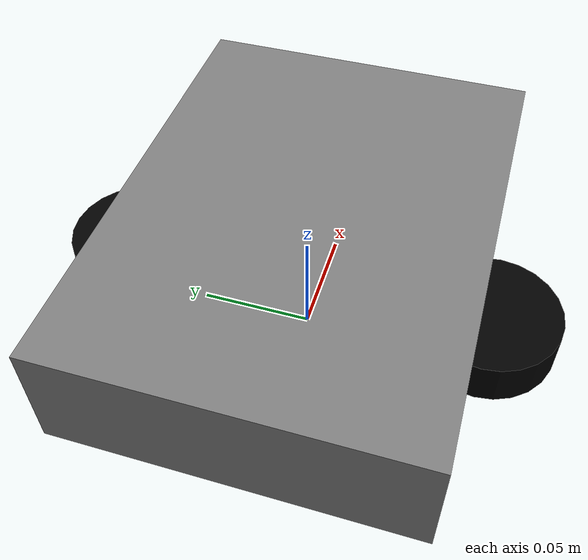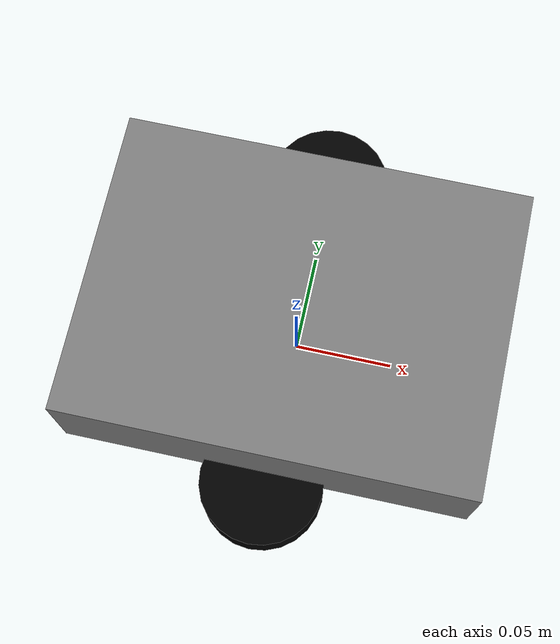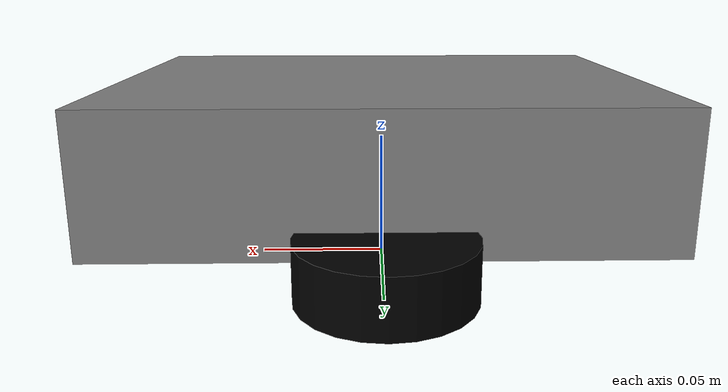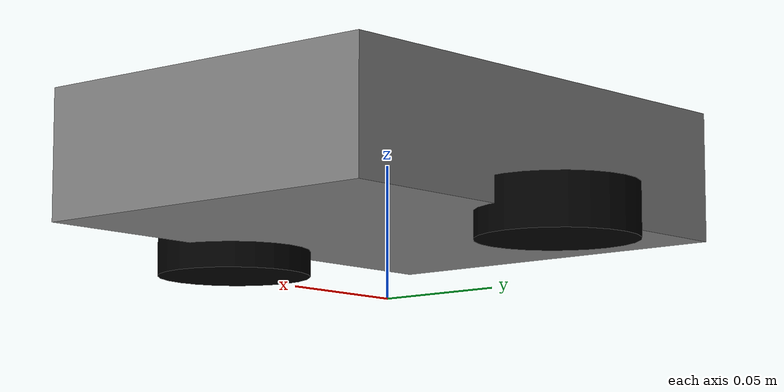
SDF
<?xml version="1.0" ?>
<sdf version="1.6">
  <model name="line_follower_bot">
    <static>false</static>

    <!-- Base -->
    <link name="chassis">
      <pose>0 0 0.05 0 0 0</pose>
      <inertial>
        <mass>1.0</mass>
        <inertia>
          <ixx>0.01</ixx>
          <iyy>0.01</iyy>
          <izz>0.02</izz>
        </inertia>
      </inertial>
      <visual name="body">
        <geometry>
          <box><size>0.2 0.15 0.05</size></box>
        </geometry>
        <material>
          <ambient>0.3 0.3 0.3 1</ambient>
          <diffuse>0.5 0.5 0.5 1</diffuse>
        </material>
      </visual>
    </link>

    <!-- Left wheel -->
    <link name="left_wheel">
      <pose>0 0.08 0.025 0 0 0</pose>
      <visual name="left_wheel_visual">
        <geometry>
          <cylinder>
            <radius>0.03</radius>
            <length>0.02</length>
          </cylinder>
        </geometry>
        <material><diffuse>0 0 0 1</diffuse></material>
      </visual>
      <collision name="left_wheel_collision">
        <geometry>
          <cylinder>
            <radius>0.03</radius>
            <length>0.02</length>
          </cylinder>
        </geometry>
      </collision>
    </link>

    <!-- Right wheel -->
    <link name="right_wheel">
      <pose>0 -0.08 0.025 0 0 0</pose>
      <visual name="right_wheel_visual">
        <geometry>
          <cylinder>
            <radius>0.03</radius>
            <length>0.02</length>
          </cylinder>
        </geometry>
        <material><diffuse>0 0 0 1</diffuse></material>
      </visual>
      <collision name="right_wheel_collision">
        <geometry>
          <cylinder>
            <radius>0.03</radius>
            <length>0.02</length>
          </cylinder>
        </geometry>
      </collision>
    </link>

    <!-- Joints -->
    <joint name="left_wheel_joint" type="revolute">
      <parent>chassis</parent>
      <child>left_wheel</child>
      <pose>0 0 0 0 0 0</pose>
      <axis>
        <xyz>0 1 0</xyz>
        <limit>
          <lower>-1000</lower>
          <upper>1000</upper>
        </limit>
      </axis>
    </joint>

    <joint name="right_wheel_joint" type="revolute">
      <parent>chassis</parent>
      <child>right_wheel</child>
      <pose>0 0 0 0 0 0</pose>
      <axis>
        <xyz>0 1 0</xyz>
        <limit>
          <lower>-1000</lower>
          <upper>1000</upper>
        </limit>
      </axis>
    </joint>

    <!-- Camera sensor -->
    <link name="camera_link">
      <pose>0 0 0.15 0 0 0</pose>
      <sensor name="camera" type="camera">
        <update_rate>30</update_rate>
        <camera>
          <horizontal_fov>1.396</horizontal_fov>
          <image>
            <width>320</width>
            <height>240</height>
            <format>R8G8B8</format>
          </image>
          <clip><near>0.01</near><far>10</far></clip>
        </camera>
        <always_on>true</always_on>
        <visualize>true</visualize>
        <plugin name="camera_controller" filename="libgazebo_ros_camera.so">
          <ros>
            <namespace>/</namespace>
            <remapping>image_raw:=/camera/image_raw</remapping>
          </ros>
          <frame_name>camera_link</frame_name>
        </plugin>
      </sensor>
    </link>

    <!-- Differential Drive Plugin -->
    <plugin name="diff_drive" filename="libgazebo_ros_diff_drive.so">
      <ros>
        <namespace>/</namespace>
        <remapping>cmd_vel:=/cmd_vel</remapping>
        <remapping>odom:=/odom</remapping>
      </ros>
      <update_rate>50.0</update_rate>
      <left_joint>left_wheel_joint</left_joint>
      <right_joint>right_wheel_joint</right_joint>
      <wheel_separation>0.16</wheel_separation>
      <wheel_radius>0.03</wheel_radius>
      <publish_odom>true</publish_odom>
      <publish_tf>true</publish_tf>
    </plugin>
  </model>
</sdf>
